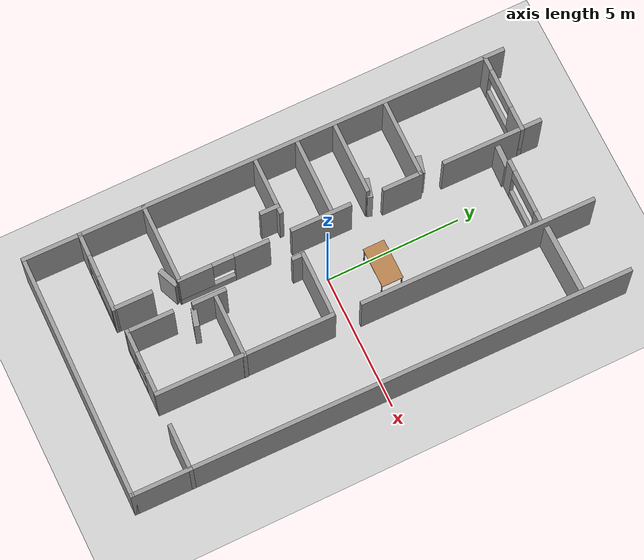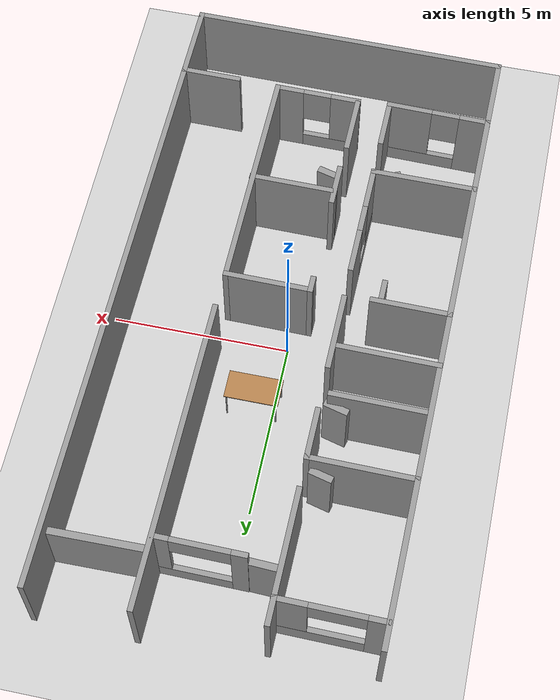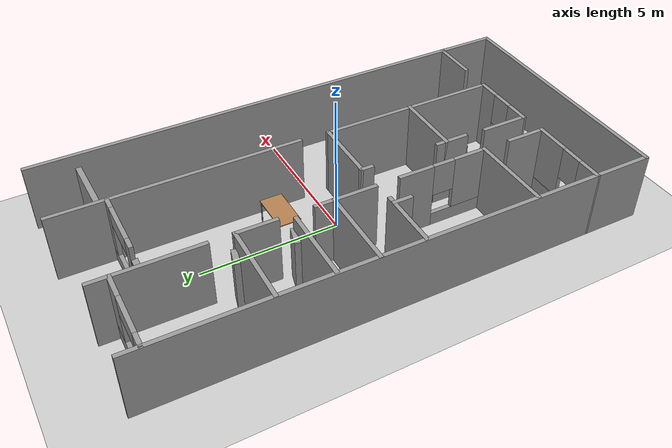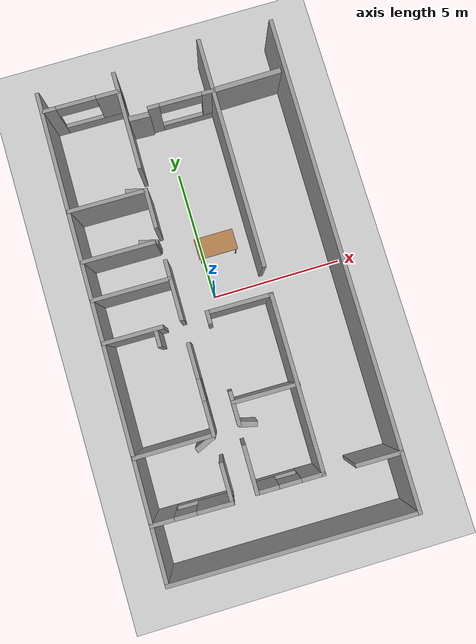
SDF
<sdf version="1.7">
 <world name="default">
  <light name="sun" type="directional">
   <pose>0 0 10 0 -0 0</pose>
   <diffuse>0.8 0.8 0.8 1</diffuse>
   <specular>0.2 0.2 0.2 1</specular>
   <attenuation>
    <range>1000</range>
    <constant>0.9</constant>
    <linear>0.01</linear>
    <quadratic>0.001</quadratic>
   </attenuation>
   <direction>-0.5 0.1 -0.9</direction>
   <spot><inner_angle>0</inner_angle><outer_angle>0</outer_angle><falloff>0</falloff></spot>
  </light>
  <model name="ground_plane">
   <static>1</static>
   <link name="link">
    <collision name="collision">
     <geometry><plane><normal>0 0 1</normal><size>100 100</size></plane></geometry>
     <surface>
      <contact><collide_bitmask>65535</collide_bitmask></contact>
      <friction><ode><mu>100</mu><mu2>50</mu2></ode></friction>
     </surface>
    </collision>
    <visual name="visual">
     <cast_shadows>0</cast_shadows>
     <geometry><plane><normal>0 0 1</normal><size>100 100</size></plane></geometry>
     <material>
      <script><uri>file://media/materials/scripts/gazebo.material</uri><name>Gazebo/Grey</name></script>
     </material>
    </visual>
   </link>
  </model>
  <gravity>0 0 -9.8</gravity>
  <magnetic_field>6e-06 2.3e-05 -4.2e-05</magnetic_field>
  <atmosphere type="adiabatic"/>
  <physics type="ode">
   <max_step_size>0.001</max_step_size>
   <real_time_factor>1</real_time_factor>
   <real_time_update_rate>1000</real_time_update_rate>
  </physics>
  <scene><ambient>0.4 0.4 0.4 1</ambient><background>0.7 0.7 0.7 1</background><shadows>1</shadows></scene>
  <spherical_coordinates>
   <surface_model>EARTH_WGS84</surface_model>
   <latitude_deg>0</latitude_deg>
   <longitude_deg>0</longitude_deg>
   <elevation>0</elevation>
   <heading_deg>0</heading_deg>
  </spherical_coordinates>
  <model name="House">
   <pose>0.205667 -0.158394 0 0 0 -1.58319</pose>
   <link name="Door_0">
    <collision name="Door_0_Collision">
     <geometry><box><size>0.824423 0.2 2</size></box></geometry>
     <pose>0 0 1 0 -0 0</pose>
    </collision>
    <visual name="Door_0_Visual">
     <pose>0 0 1 0 -0 0</pose>
     <geometry><box><size>0.824423 0.2 2</size></box></geometry>
     <material>
      <script><uri>file://media/materials/scripts/gazebo.material</uri><name>Gazebo/Grey</name></script>
     </material>
    </visual>
    <pose>-7.16721 -1.13975 0 0 0 -1.60204</pose>
   </link>
   <link name="Door_2">
    <collision name="Door_2_Collision">
     <geometry><box><size>0.658181 0.2 2</size></box></geometry>
     <pose>0 0 1 0 -0 0</pose>
    </collision>
    <visual name="Door_2_Visual">
     <pose>0 0 1 0 -0 0</pose>
     <geometry><box><size>0.658181 0.2 2</size></box></geometry>
     <material>
      <script><uri>file://media/materials/scripts/gazebo.material</uri><name>Gazebo/Grey</name></script>
     </material>
    </visual>
    <pose>-4.48698 -2.03462 0 0 0 -1.80815</pose>
   </link>
   <link name="Door_4">
    <collision name="Door_4_Collision">
     <geometry><box><size>0.702562 0.2 2</size></box></geometry>
     <pose>0 0 1 0 -0 0</pose>
    </collision>
    <visual name="Door_4_Visual">
     <pose>0 0 1 0 -0 0</pose>
     <geometry><box><size>0.702562 0.2 2</size></box></geometry>
     <material>
      <script><uri>file://media/materials/scripts/gazebo.material</uri><name>Gazebo/Grey</name></script>
     </material>
    </visual>
    <pose>-2.51977 -2.03144 0 0 -0 -1.81711</pose>
   </link>
   <link name="Door_5">
    <collision name="Door_5_Collision">
     <geometry><box><size>2.71834 0.2 2</size></box></geometry>
     <pose>0 0 1 0 -0 0</pose>
    </collision>
    <visual name="Door_5_Visual">
     <pose>0 0 1 0 -0 0</pose>
     <geometry><box><size>2.71834 0.2 2</size></box></geometry>
     <material>
      <script><uri>file://media/materials/scripts/gazebo.material</uri><name>Gazebo/Grey</name></script>
     </material>
    </visual>
    <pose>-7.43086 3.14167 0 0 0 -1.5458</pose>
   </link>
   <link name="Door_6">
    <collision name="Door_6_Collision">
     <geometry><box><size>0.779017 0.2 2</size></box></geometry>
     <pose>0 0 1 0 -0 0</pose>
    </collision>
    <visual name="Door_6_Visual">
     <pose>0 0 1 0 -0 0</pose>
     <geometry><box><size>0.779017 0.2 2</size></box></geometry>
     <material>
      <script><uri>file://media/materials/scripts/gazebo.material</uri><name>Gazebo/Grey</name></script>
     </material>
    </visual>
    <pose>4.94763 -1.98667 0 0 -0 -1.16358</pose>
   </link>
   <link name="Door_7">
    <collision name="Door_7_Collision">
     <geometry><box><size>0.657746 0.2 2</size></box></geometry>
     <pose>0 0 1 0 -0 0</pose>
    </collision>
    <visual name="Door_7_Visual">
     <pose>0 0 1 0 -0 0</pose>
     <geometry><box><size>0.657746 0.2 2</size></box></geometry>
     <material>
      <script><uri>file://media/materials/scripts/gazebo.material</uri><name>Gazebo/Grey</name></script>
     </material>
    </visual>
    <pose>4.70543 -0.336462 0 0 -0 1.32035</pose>
   </link>
   <link name="Wall_0">
    <collision name="Wall_0_Collision">
     <geometry><box><size>8.75 0.15 2.5</size></box></geometry>
     <pose>0 0 1.25 0 -0 0</pose>
    </collision>
    <visual name="Wall_0_Visual">
     <pose>0 0 1.25 0 -0 0</pose>
     <geometry><box><size>8.75 0.15 2.5</size></box></geometry>
     <material>
      <script><uri>file://media/materials/scripts/gazebo.material</uri><name>Gazebo/Grey</name></script>
      <ambient>1 1 1 1</ambient>
     </material>
     <meta><layer>0</layer></meta>
    </visual>
    <pose>-4.83488 1.71843 0 0 -0 3.14159</pose>
   </link>
   <link name="Wall_13">
    <collision name="Wall_13_Collision">
     <geometry><box><size>0.5 0.15 2.5</size></box></geometry>
     <pose>0 0 1.25 0 -0 0</pose>
    </collision>
    <visual name="Wall_13_Visual">
     <pose>0 0 1.25 0 -0 0</pose>
     <geometry><box><size>0.5 0.15 2.5</size></box></geometry>
     <material>
      <script><uri>file://media/materials/scripts/gazebo.material</uri><name>Gazebo/Grey</name></script>
      <ambient>1 1 1 1</ambient>
     </material>
     <meta><layer>0</layer></meta>
    </visual>
    <pose>0.719703 -0.670984 0 0 -0 3.14159</pose>
   </link>
   <link name="Wall_16">
    <collision name="Wall_16_Collision">
     <geometry><box><size>2.5 0.15 2.5</size></box></geometry>
     <pose>0 0 1.25 0 -0 0</pose>
    </collision>
    <visual name="Wall_16_Visual">
     <pose>0 0 1.25 0 -0 0</pose>
     <geometry><box><size>2.5 0.15 2.5</size></box></geometry>
     <material>
      <script><uri>file://media/materials/scripts/gazebo.material</uri><name>Gazebo/Grey</name></script>
      <ambient>1 1 1 1</ambient>
     </material>
     <meta><layer>0</layer></meta>
    </visual>
    <pose>0.544703 0.504016 0 0 -0 1.5708</pose>
   </link>
   <link name="Wall_17">
    <collision name="Wall_17_Collision">
     <geometry><box><size>6.60678 0.15 2.5</size></box></geometry>
     <pose>0 0 1.25 0 -0 0</pose>
    </collision>
    <visual name="Wall_17_Visual">
     <pose>0 0 1.25 0 -0 0</pose>
     <geometry><box><size>6.60678 0.15 2.5</size></box></geometry>
     <material>
      <script><uri>file://media/materials/scripts/gazebo.material</uri><name>Gazebo/Grey</name></script>
      <ambient>1 1 1 1</ambient>
     </material>
     <meta><layer>0</layer></meta>
    </visual>
    <pose>3.77301 1.67902 0 0 -0 0</pose>
   </link>
   <link name="Wall_18">
    <pose>7.00116 0.481345 0 0 -0 -1.57093</pose>
    <visual name="Wall_18_Visual_0">
     <pose>-0.834839 0 1.25 0 -0 0</pose>
     <geometry><box><size>0.845417 0.15 2.5</size></box></geometry>
     <material>
      <script><uri>file://media/materials/scripts/gazebo.material</uri><name>Gazebo/Grey</name></script>
      <ambient>1 1 1 1</ambient>
     </material>
     <meta><layer>0</layer></meta>
    </visual>
    <collision name="Wall_18_Collision_0">
     <geometry><box><size>0.845417 0.15 2.5</size></box></geometry>
     <pose>-0.834839 0 1.25 0 -0 0</pose>
    </collision>
    <visual name="Wall_18_Visual_1">
     <pose>0.422709 0 0.25 0 -0 0</pose>
     <geometry><box><size>1.66968 0.15 0.5</size></box></geometry>
     <material>
      <script><uri>file://media/materials/scripts/gazebo.material</uri><name>Gazebo/Grey</name></script>
      <ambient>1 1 1 1</ambient>
     </material>
     <meta><layer>0</layer></meta>
    </visual>
    <collision name="Wall_18_Collision_1">
     <geometry><box><size>1.66968 0.15 0.5</size></box></geometry>
     <pose>0.422709 0 0.25 0 -0 0</pose>
    </collision>
    <visual name="Wall_18_Visual_2">
     <pose>0.822709 0 1.5 0 -0 0</pose>
     <geometry><box><size>0.869677 0.15 2</size></box></geometry>
     <material>
      <script><uri>file://media/materials/scripts/gazebo.material</uri><name>Gazebo/Grey</name></script>
      <ambient>1 1 1 1</ambient>
     </material>
     <meta><layer>0</layer></meta>
    </visual>
    <collision name="Wall_18_Collision_2">
     <geometry><box><size>0.869677 0.15 2</size></box></geometry>
     <pose>0.822709 0 1.5 0 -0 0</pose>
    </collision>
    <visual name="Wall_18_Visual_3">
     <pose>-0.01213 0 1.9 0 -0 0</pose>
     <geometry><box><size>0.8 0.15 1.2</size></box></geometry>
     <material>
      <script><uri>file://media/materials/scripts/gazebo.material</uri><name>Gazebo/Grey</name></script>
      <ambient>1 1 1 1</ambient>
     </material>
     <meta><layer>0</layer></meta>
    </visual>
    <collision name="Wall_18_Collision_3">
     <geometry><box><size>0.8 0.15 1.2</size></box></geometry>
     <pose>-0.01213 0 1.9 0 -0 0</pose>
    </collision>
   </link>
   <link name="Wall_21">
    <collision name="Wall_21_Collision">
     <geometry><box><size>1.75 0.15 2.5</size></box></geometry>
     <pose>0 0 1.25 0 -0 0</pose>
    </collision>
    <visual name="Wall_21_Visual">
     <pose>0 0 1.25 0 -0 0</pose>
     <geometry><box><size>1.75 0.15 2.5</size></box></geometry>
     <material>
      <script><uri>file://media/materials/scripts/gazebo.material</uri><name>Gazebo/Grey</name></script>
      <ambient>1 1 1 1</ambient>
     </material>
     <meta><layer>0</layer></meta>
    </visual>
    <pose>7.03479 3.68284 0 0 -0 1.57054</pose>
   </link>
   <link name="Wall_22">
    <collision name="Wall_22_Collision">
     <geometry><box><size>16.32 0.15 2.5</size></box></geometry>
     <pose>0 0 1.25 0 -0 0</pose>
    </collision>
    <visual name="Wall_22_Visual">
     <pose>0 0 1.25 0 -0 0</pose>
     <geometry><box><size>16.32 0.15 2.5</size></box></geometry>
     <material>
      <script><uri>file://media/materials/scripts/gazebo.material</uri><name>Gazebo/Grey</name></script>
      <ambient>1 1 1 1</ambient>
     </material>
     <meta><layer>0</layer></meta>
    </visual>
    <pose>-1.05 4.4828 0 0 -0 3.14159</pose>
   </link>
   <link name="Wall_25">
    <pose>-8.10341 -3.0267 0 0 -0 1.5708</pose>
    <visual name="Wall_25_Visual_0">
     <pose>-1.21586 0 1.25 0 -0 0</pose>
     <geometry><box><size>0.568274 0.15 2.5</size></box></geometry>
     <material>
      <script><uri>file://media/materials/scripts/gazebo.material</uri><name>Gazebo/Grey</name></script>
      <ambient>1 1 1 1</ambient>
     </material>
     <meta><layer>0</layer></meta>
    </visual>
    <collision name="Wall_25_Collision_0">
     <geometry><box><size>0.568274 0.15 2.5</size></box></geometry>
     <pose>-1.21586 0 1.25 0 -0 0</pose>
    </collision>
    <visual name="Wall_25_Visual_1">
     <pose>0.284137 0 0.3 0 -0 0</pose>
     <geometry><box><size>2.43173 0.15 0.6</size></box></geometry>
     <material>
      <script><uri>file://media/materials/scripts/gazebo.material</uri><name>Gazebo/Grey</name></script>
      <ambient>1 1 1 1</ambient>
     </material>
     <meta><layer>0</layer></meta>
    </visual>
    <collision name="Wall_25_Collision_1">
     <geometry><box><size>2.43173 0.15 0.6</size></box></geometry>
     <pose>0.284137 0 0.3 0 -0 0</pose>
    </collision>
    <visual name="Wall_25_Visual_2">
     <pose>1.03414 0 1.55 0 -0 0</pose>
     <geometry><box><size>0.931726 0.15 1.9</size></box></geometry>
     <material>
      <script><uri>file://media/materials/scripts/gazebo.material</uri><name>Gazebo/Grey</name></script>
      <ambient>1 1 1 1</ambient>
     </material>
     <meta><layer>0</layer></meta>
    </visual>
    <collision name="Wall_25_Collision_2">
     <geometry><box><size>0.931726 0.15 1.9</size></box></geometry>
     <pose>1.03414 0 1.55 0 -0 0</pose>
    </collision>
    <visual name="Wall_25_Visual_3">
     <pose>-0.181726 0 2.15 0 -0 0</pose>
     <geometry><box><size>1.5 0.15 0.7</size></box></geometry>
     <material>
      <script><uri>file://media/materials/scripts/gazebo.material</uri><name>Gazebo/Grey</name></script>
      <ambient>1 1 1 1</ambient>
     </material>
     <meta><layer>0</layer></meta>
    </visual>
    <collision name="Wall_25_Collision_3">
     <geometry><box><size>1.5 0.15 0.7</size></box></geometry>
     <pose>-0.181726 0 2.15 0 -0 0</pose>
    </collision>
   </link>
   <link name="Wall_29">
    <collision name="Wall_29_Collision">
     <geometry><box><size>2.75 0.15 2.5</size></box></geometry>
     <pose>0 0 1.25 0 -0 0</pose>
    </collision>
    <visual name="Wall_29_Visual">
     <pose>0 0 1.25 0 -0 0</pose>
     <geometry><box><size>2.75 0.15 2.5</size></box></geometry>
     <material>
      <script><uri>file://media/materials/scripts/gazebo.material</uri><name>Gazebo/Grey</name></script>
      <ambient>1 1 1 1</ambient>
     </material>
     <meta><layer>0</layer></meta>
    </visual>
    <pose>-2.38195 -3.13658 0 0 -0 -1.5708</pose>
   </link>
   <link name="Wall_3">
    <pose>-7.19604 0.488893 0 0 -0 1.5708</pose>
    <visual name="Wall_3_Visual_0">
     <pose>-1.03027 0 1.25 0 -0 0</pose>
     <geometry><box><size>0.439461 0.15 2.5</size></box></geometry>
     <material>
      <script><uri>file://media/materials/scripts/gazebo.material</uri><name>Gazebo/Grey</name></script>
      <ambient>1 1 1 1</ambient>
     </material>
     <meta><layer>0</layer></meta>
    </visual>
    <collision name="Wall_3_Collision_0">
     <geometry><box><size>0.439461 0.15 2.5</size></box></geometry>
     <pose>-1.03027 0 1.25 0 -0 0</pose>
    </collision>
    <visual name="Wall_3_Visual_1">
     <pose>0.219731 0 0.25 0 -0 0</pose>
     <geometry><box><size>2.06054 0.15 0.5</size></box></geometry>
     <material>
      <script><uri>file://media/materials/scripts/gazebo.material</uri><name>Gazebo/Grey</name></script>
      <ambient>1 1 1 1</ambient>
     </material>
     <meta><layer>0</layer></meta>
    </visual>
    <collision name="Wall_3_Collision_1">
     <geometry><box><size>2.06054 0.15 0.5</size></box></geometry>
     <pose>0.219731 0 0.25 0 -0 0</pose>
    </collision>
    <visual name="Wall_3_Visual_2">
     <pose>1.01973 0 1.5 0 -0 0</pose>
     <geometry><box><size>0.460539 0.15 2</size></box></geometry>
     <material>
      <script><uri>file://media/materials/scripts/gazebo.material</uri><name>Gazebo/Grey</name></script>
      <ambient>1 1 1 1</ambient>
     </material>
     <meta><layer>0</layer></meta>
    </visual>
    <collision name="Wall_3_Collision_2">
     <geometry><box><size>0.460539 0.15 2</size></box></geometry>
     <pose>1.01973 0 1.5 0 -0 0</pose>
    </collision>
    <visual name="Wall_3_Visual_3">
     <pose>-0.010539 0 2.15 0 -0 0</pose>
     <geometry><box><size>1.6 0.15 0.7</size></box></geometry>
     <material>
      <script><uri>file://media/materials/scripts/gazebo.material</uri><name>Gazebo/Grey</name></script>
      <ambient>1 1 1 1</ambient>
     </material>
     <meta><layer>0</layer></meta>
    </visual>
    <collision name="Wall_3_Collision_3">
     <geometry><box><size>1.6 0.15 0.7</size></box></geometry>
     <pose>-0.010539 0 2.15 0 -0 0</pose>
    </collision>
   </link>
   <link name="Wall_31">
    <collision name="Wall_31_Collision">
     <geometry><box><size>1.5 0.15 2.5</size></box></geometry>
     <pose>0 0 1.25 0 -0 0</pose>
    </collision>
    <visual name="Wall_31_Visual">
     <pose>0 0 1.25 0 -0 0</pose>
     <geometry><box><size>1.5 0.15 2.5</size></box></geometry>
     <material>
      <script><uri>file://media/materials/scripts/gazebo.material</uri><name>Gazebo/Grey</name></script>
      <ambient>1 1 1 1</ambient>
     </material>
     <meta><layer>0</layer></meta>
    </visual>
    <pose>-3.606 -1.6082 0 0 -0 3.14159</pose>
   </link>
   <link name="Wall_33">
    <collision name="Wall_33_Collision">
     <geometry><box><size>2.25 0.15 2.5</size></box></geometry>
     <pose>0 0 1.25 0 -0 0</pose>
    </collision>
    <visual name="Wall_33_Visual">
     <pose>0 0 1.25 0 -0 0</pose>
     <geometry><box><size>2.25 0.15 2.5</size></box></geometry>
     <material>
      <script><uri>file://media/materials/scripts/gazebo.material</uri><name>Gazebo/Grey</name></script>
      <ambient>1 1 1 1</ambient>
     </material>
     <meta><layer>0</layer></meta>
    </visual>
    <pose>-0.551 -1.6082 0 0 -0 0</pose>
   </link>
   <link name="Wall_35">
    <collision name="Wall_35_Collision">
     <geometry><box><size>1.25 0.15 2.5</size></box></geometry>
     <pose>0 0 1.25 0 -0 0</pose>
    </collision>
    <visual name="Wall_35_Visual">
     <pose>0 0 1.25 0 -0 0</pose>
     <geometry><box><size>1.25 0.15 2.5</size></box></geometry>
     <material>
      <script><uri>file://media/materials/scripts/gazebo.material</uri><name>Gazebo/Grey</name></script>
      <ambient>1 1 1 1</ambient>
     </material>
     <meta><layer>0</layer></meta>
    </visual>
    <pose>4.03071 -0.655861 0 0 -0 0</pose>
   </link>
   <link name="Wall_37">
    <collision name="Wall_37_Collision">
     <geometry><box><size>2.5 0.15 2.5</size></box></geometry>
     <pose>0 0 1.25 0 -0 0</pose>
    </collision>
    <visual name="Wall_37_Visual">
     <pose>0 0 1.25 0 -0 0</pose>
     <geometry><box><size>2.5 0.15 2.5</size></box></geometry>
     <material>
      <script><uri>file://media/materials/scripts/gazebo.material</uri><name>Gazebo/Grey</name></script>
      <ambient>1 1 1 1</ambient>
     </material>
     <meta><layer>0</layer></meta>
    </visual>
    <pose>3.81342 0.519139 0 0 -0 1.5708</pose>
   </link>
   <link name="Wall_39">
    <collision name="Wall_39_Collision">
     <geometry><box><size>1.76519 0.15 2.5</size></box></geometry>
     <pose>0 0 1.25 0 -0 0</pose>
    </collision>
    <visual name="Wall_39_Visual">
     <pose>0 0 1.25 0 -0 0</pose>
     <geometry><box><size>1.76519 0.15 2.5</size></box></geometry>
     <material>
      <script><uri>file://media/materials/scripts/gazebo.material</uri><name>Gazebo/Grey</name></script>
      <ambient>1 1 1 1</ambient>
     </material>
     <meta><layer>0</layer></meta>
    </visual>
    <pose>6.1935 -0.701202 0 0 -0 0</pose>
   </link>
   <link name="Wall_41">
    <pose>3.076 -1.6082 0 0 -0 0</pose>
    <visual name="Wall_41_Visual_0">
     <pose>-1.04285 0 1.25 0 -0 0</pose>
     <geometry><box><size>1.30875 0.15 2.5</size></box></geometry>
     <material>
      <script><uri>file://media/materials/scripts/gazebo.material</uri><name>Gazebo/Grey</name></script>
      <ambient>1 1 1 1</ambient>
     </material>
     <meta><layer>0</layer></meta>
    </visual>
    <collision name="Wall_41_Collision_0">
     <geometry><box><size>1.30875 0.15 2.5</size></box></geometry>
     <pose>-1.04285 0 1.25 0 -0 0</pose>
    </collision>
    <visual name="Wall_41_Visual_1">
     <pose>0.654374 0 0.25 0 -0 0</pose>
     <geometry><box><size>2.08571 0.15 0.5</size></box></geometry>
     <material>
      <script><uri>file://media/materials/scripts/gazebo.material</uri><name>Gazebo/Grey</name></script>
      <ambient>1 1 1 1</ambient>
     </material>
     <meta><layer>0</layer></meta>
    </visual>
    <collision name="Wall_41_Collision_1">
     <geometry><box><size>2.08571 0.15 0.5</size></box></geometry>
     <pose>0.654374 0 0.25 0 -0 0</pose>
    </collision>
    <visual name="Wall_41_Visual_2">
     <pose>1.05437 0 1.5 0 -0 0</pose>
     <geometry><box><size>1.28571 0.15 2</size></box></geometry>
     <material>
      <script><uri>file://media/materials/scripts/gazebo.material</uri><name>Gazebo/Grey</name></script>
      <ambient>1 1 1 1</ambient>
     </material>
     <meta><layer>0</layer></meta>
    </visual>
    <collision name="Wall_41_Collision_2">
     <geometry><box><size>1.28571 0.15 2</size></box></geometry>
     <pose>1.05437 0 1.5 0 -0 0</pose>
    </collision>
    <visual name="Wall_41_Visual_3">
     <pose>0.01152 0 1.9 0 -0 0</pose>
     <geometry><box><size>0.8 0.15 1.2</size></box></geometry>
     <material>
      <script><uri>file://media/materials/scripts/gazebo.material</uri><name>Gazebo/Grey</name></script>
      <ambient>1 1 1 1</ambient>
     </material>
     <meta><layer>0</layer></meta>
    </visual>
    <collision name="Wall_41_Collision_3">
     <geometry><box><size>0.8 0.15 1.2</size></box></geometry>
     <pose>0.01152 0 1.9 0 -0 0</pose>
    </collision>
   </link>
   <link name="Wall_42">
    <collision name="Wall_42_Collision">
     <geometry><box><size>3 0.15 2.5</size></box></geometry>
     <pose>0 0 1.25 0 -0 0</pose>
    </collision>
    <visual name="Wall_42_Visual">
     <pose>0 0 1.25 0 -0 0</pose>
     <geometry><box><size>3 0.15 2.5</size></box></geometry>
     <material>
      <script><uri>file://media/materials/scripts/gazebo.material</uri><name>Gazebo/Grey</name></script>
      <ambient>1 1 1 1</ambient>
     </material>
     <meta><layer>0</layer></meta>
    </visual>
    <pose>4.70576 -3.0334 0 0 -0 -1.56535</pose>
   </link>
   <link name="Wall_44">
    <collision name="Wall_44_Collision">
     <geometry><box><size>3 0.15 2.5</size></box></geometry>
     <pose>0 0 1.25 0 -0 0</pose>
    </collision>
    <visual name="Wall_44_Visual">
     <pose>0 0 1.25 0 -0 0</pose>
     <geometry><box><size>3 0.15 2.5</size></box></geometry>
     <material>
      <script><uri>file://media/materials/scripts/gazebo.material</uri><name>Gazebo/Grey</name></script>
      <ambient>1 1 1 1</ambient>
     </material>
     <meta><layer>0</layer></meta>
    </visual>
    <pose>-0.965411 -3.04182 0 0 -0 1.5708</pose>
   </link>
   <link name="Wall_46">
    <collision name="Wall_46_Collision">
     <geometry><box><size>2.25 0.15 2.5</size></box></geometry>
     <pose>0 0 1.25 0 -0 0</pose>
    </collision>
    <visual name="Wall_46_Visual">
     <pose>0 0 1.25 0 -0 0</pose>
     <geometry><box><size>2.25 0.15 2.5</size></box></geometry>
     <material>
      <script><uri>file://media/materials/scripts/gazebo.material</uri><name>Gazebo/Grey</name></script>
      <ambient>1 1 1 1</ambient>
     </material>
     <meta><layer>0</layer></meta>
    </visual>
    <pose>0.607368 -3.41475 0 0 -0 -1.5708</pose>
   </link>
   <link name="Wall_48">
    <collision name="Wall_48_Collision">
     <geometry><box><size>3 0.15 2.5</size></box></geometry>
     <pose>0 0 1.25 0 -0 0</pose>
    </collision>
    <visual name="Wall_48_Visual">
     <pose>0 0 1.25 0 -0 0</pose>
     <geometry><box><size>3 0.15 2.5</size></box></geometry>
     <material>
      <script><uri>file://media/materials/scripts/gazebo.material</uri><name>Gazebo/Grey</name></script>
      <ambient>1 1 1 1</ambient>
     </material>
     <meta><layer>0</layer></meta>
    </visual>
    <pose>-4.281 -3.0332 0 0 -0 -1.5708</pose>
   </link>
   <link name="Wall_5">
    <collision name="Wall_5_Collision">
     <geometry><box><size>3.728 0.15 2.5</size></box></geometry>
     <pose>0 0 1.25 0 -0 0</pose>
    </collision>
    <visual name="Wall_5_Visual">
     <pose>0 0 1.25 0 -0 0</pose>
     <geometry><box><size>3.728 0.15 2.5</size></box></geometry>
     <material>
      <script><uri>file://media/materials/scripts/gazebo.material</uri><name>Gazebo/Grey</name></script>
      <ambient>1 1 1 1</ambient>
     </material>
     <meta><layer>0</layer></meta>
    </visual>
    <pose>-6.98 -1.6082 0 0 -0 0</pose>
   </link>
   <link name="Wall_51">
    <collision name="Wall_51_Collision">
     <geometry><box><size>0.729 0.15 2.5</size></box></geometry>
     <pose>0 0 1.25 0 -0 0</pose>
    </collision>
    <visual name="Wall_51_Visual">
     <pose>0 0 1.25 0 -0 0</pose>
     <geometry><box><size>0.729 0.15 2.5</size></box></geometry>
     <material>
      <script><uri>file://media/materials/scripts/gazebo.material</uri><name>Gazebo/Grey</name></script>
      <ambient>1 1 1 1</ambient>
     </material>
     <meta><layer>0</layer></meta>
    </visual>
    <pose>0.9075 -2.5912 0 0 -0 3.14159</pose>
   </link>
   <link name="Wall_53">
    <collision name="Wall_53_Collision">
     <geometry><box><size>2.25 0.15 2.5</size></box></geometry>
     <pose>0 0 1.25 0 -0 0</pose>
    </collision>
    <visual name="Wall_53_Visual">
     <pose>0 0 1.25 0 -0 0</pose>
     <geometry><box><size>2.25 0.15 2.5</size></box></geometry>
     <material>
      <script><uri>file://media/materials/scripts/gazebo.material</uri><name>Gazebo/Grey</name></script>
      <ambient>1 1 1 1</ambient>
     </material>
     <meta><layer>0</layer></meta>
    </visual>
    <pose>8.085 4.4828 0 0 -0 0</pose>
   </link>
   <link name="Wall_54">
    <collision name="Wall_54_Collision">
     <geometry><box><size>9.115 0.15 2.5</size></box></geometry>
     <pose>0 0 1.25 0 -0 0</pose>
    </collision>
    <visual name="Wall_54_Visual">
     <pose>0 0 1.25 0 -0 0</pose>
     <geometry><box><size>9.115 0.15 2.5</size></box></geometry>
     <material>
      <script><uri>file://media/materials/scripts/gazebo.material</uri><name>Gazebo/Grey</name></script>
      <ambient>1 1 1 1</ambient>
     </material>
     <meta><layer>0</layer></meta>
    </visual>
    <pose>9.135 0.000298 0 0 -0 -1.5708</pose>
   </link>
   <link name="Wall_55">
    <collision name="Wall_55_Collision">
     <geometry><box><size>2.21894 0.15 2.5</size></box></geometry>
     <pose>0 0 1.25 0 -0 0</pose>
    </collision>
    <visual name="Wall_55_Visual">
     <pose>0 0 1.25 0 -0 0</pose>
     <geometry><box><size>2.21894 0.15 2.5</size></box></geometry>
     <material>
      <script><uri>file://media/materials/scripts/gazebo.material</uri><name>Gazebo/Grey</name></script>
      <ambient>1 1 1 1</ambient>
     </material>
     <meta><layer>0</layer></meta>
    </visual>
    <pose>8.1005 -4.4822 0 0 -0 3.14159</pose>
   </link>
   <link name="Wall_7">
    <collision name="Wall_7_Collision">
     <geometry><box><size>15.9848 0.15 2.5</size></box></geometry>
     <pose>0 0 1.25 0 -0 0</pose>
    </collision>
    <visual name="Wall_7_Visual">
     <pose>0 0 1.25 0 -0 0</pose>
     <geometry><box><size>15.9848 0.15 2.5</size></box></geometry>
     <material>
      <script><uri>file://media/materials/scripts/gazebo.material</uri><name>Gazebo/Grey</name></script>
      <ambient>1 1 1 1</ambient>
     </material>
     <meta><layer>0</layer></meta>
    </visual>
    <pose>-0.851407 -4.48208 0 0 -0 -1.6e-05</pose>
   </link>
   <link name="Wall_8">
    <pose>7.08115 -3.04951 0 0 -0 1.56022</pose>
    <visual name="Wall_8_Visual_0">
     <pose>-1.06199 0 1.25 0 -0 0</pose>
     <geometry><box><size>0.891298 0.15 2.5</size></box></geometry>
     <material>
      <script><uri>file://media/materials/scripts/gazebo.material</uri><name>Gazebo/Grey</name></script>
      <ambient>1 1 1 1</ambient>
     </material>
     <meta><layer>0</layer></meta>
    </visual>
    <collision name="Wall_8_Collision_0">
     <geometry><box><size>0.891298 0.15 2.5</size></box></geometry>
     <pose>-1.06199 0 1.25 0 -0 0</pose>
    </collision>
    <visual name="Wall_8_Visual_1">
     <pose>0.445649 0 0.25 0 -0 0</pose>
     <geometry><box><size>2.12398 0.15 0.5</size></box></geometry>
     <material>
      <script><uri>file://media/materials/scripts/gazebo.material</uri><name>Gazebo/Grey</name></script>
      <ambient>1 1 1 1</ambient>
     </material>
     <meta><layer>0</layer></meta>
    </visual>
    <collision name="Wall_8_Collision_1">
     <geometry><box><size>2.12398 0.15 0.5</size></box></geometry>
     <pose>0.445649 0 0.25 0 -0 0</pose>
    </collision>
    <visual name="Wall_8_Visual_2">
     <pose>0.845649 0 1.5 0 -0 0</pose>
     <geometry><box><size>1.32398 0.15 2</size></box></geometry>
     <material>
      <script><uri>file://media/materials/scripts/gazebo.material</uri><name>Gazebo/Grey</name></script>
      <ambient>1 1 1 1</ambient>
     </material>
     <meta><layer>0</layer></meta>
    </visual>
    <collision name="Wall_8_Collision_2">
     <geometry><box><size>1.32398 0.15 2</size></box></geometry>
     <pose>0.845649 0 1.5 0 -0 0</pose>
    </collision>
    <visual name="Wall_8_Visual_3">
     <pose>-0.216343 0 1.9 0 -0 0</pose>
     <geometry><box><size>0.8 0.15 1.2</size></box></geometry>
     <material>
      <script><uri>file://media/materials/scripts/gazebo.material</uri><name>Gazebo/Grey</name></script>
      <ambient>1 1 1 1</ambient>
     </material>
     <meta><layer>0</layer></meta>
    </visual>
    <collision name="Wall_8_Collision_3">
     <geometry><box><size>0.8 0.15 1.2</size></box></geometry>
     <pose>-0.216343 0 1.9 0 -0 0</pose>
    </collision>
   </link>
   <link name="Wall_9">
    <collision name="Wall_9_Collision">
     <geometry><box><size>1.5 0.15 2.5</size></box></geometry>
     <pose>0 0 1.25 0 -0 0</pose>
    </collision>
    <visual name="Wall_9_Visual">
     <pose>0 0 1.25 0 -0 0</pose>
     <geometry><box><size>1.5 0.15 2.5</size></box></geometry>
     <material>
      <script><uri>file://media/materials/scripts/gazebo.material</uri><name>Gazebo/Grey</name></script>
      <ambient>1 1 1 1</ambient>
     </material>
     <meta><layer>0</layer></meta>
    </visual>
    <pose>6.42131 -1.61682 0 0 -0 3.14159</pose>
   </link>
   <static>1</static>
  </model>
  <model name="table">
   <static>1</static>
   <link name="link">
    <collision name="surface">
     <pose>0 0 1 0 -0 0</pose>
     <geometry><box><size>1.5 0.8 0.03</size></box></geometry>
     <surface><friction><ode><mu>0.6</mu><mu2>0.6</mu2></ode></friction></surface>
    </collision>
    <visual name="visual1">
     <pose>0 0 1 0 -0 0</pose>
     <geometry><box><size>1.5 0.8 0.03</size></box></geometry>
     <material>
      <script><uri>file://media/materials/scripts/gazebo.material</uri><name>Gazebo/Wood</name></script>
     </material>
    </visual>
    <collision name="front_left_leg">
     <pose>0.68 0.38 0.5 0 -0 0</pose>
     <geometry><cylinder><radius>0.02</radius><length>1</length></cylinder></geometry>
    </collision>
    <visual name="front_left_leg">
     <pose>0.68 0.38 0.5 0 -0 0</pose>
     <geometry><cylinder><radius>0.02</radius><length>1</length></cylinder></geometry>
     <material>
      <script><uri>file://media/materials/scripts/gazebo.material</uri><name>Gazebo/Grey</name></script>
     </material>
    </visual>
    <collision name="front_right_leg">
     <pose>0.68 -0.38 0.5 0 -0 0</pose>
     <geometry><cylinder><radius>0.02</radius><length>1</length></cylinder></geometry>
    </collision>
    <visual name="front_right_leg">
     <pose>0.68 -0.38 0.5 0 -0 0</pose>
     <geometry><cylinder><radius>0.02</radius><length>1</length></cylinder></geometry>
     <material>
      <script><uri>file://media/materials/scripts/gazebo.material</uri><name>Gazebo/Grey</name></script>
     </material>
    </visual>
    <collision name="back_right_leg">
     <pose>-0.68 -0.38 0.5 0 -0 0</pose>
     <geometry><cylinder><radius>0.02</radius><length>1</length></cylinder></geometry>
    </collision>
    <visual name="back_right_leg">
     <pose>-0.68 -0.38 0.5 0 -0 0</pose>
     <geometry><cylinder><radius>0.02</radius><length>1</length></cylinder></geometry>
     <material>
      <script><uri>file://media/materials/scripts/gazebo.material</uri><name>Gazebo/Grey</name></script>
     </material>
    </visual>
    <collision name="back_left_leg">
     <pose>-0.68 0.38 0.5 0 -0 0</pose>
     <geometry><cylinder><radius>0.02</radius><length>1</length></cylinder></geometry>
    </collision>
    <visual name="back_left_leg">
     <pose>-0.68 0.38 0.5 0 -0 0</pose>
     <geometry><cylinder><radius>0.02</radius><length>1</length></cylinder></geometry>
     <material>
      <script><uri>file://media/materials/scripts/gazebo.material</uri><name>Gazebo/Grey</name></script>
     </material>
    </visual>
   </link>
   <pose>0.569532 1.81183 0 0 -0 0</pose>
  </model>
 </world>
</sdf>
